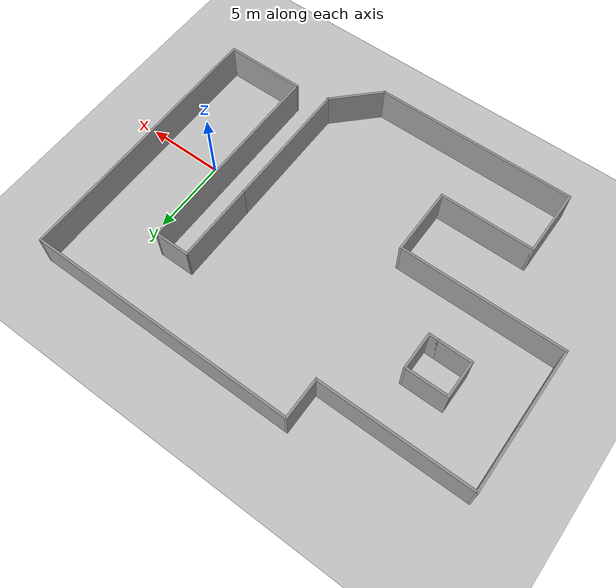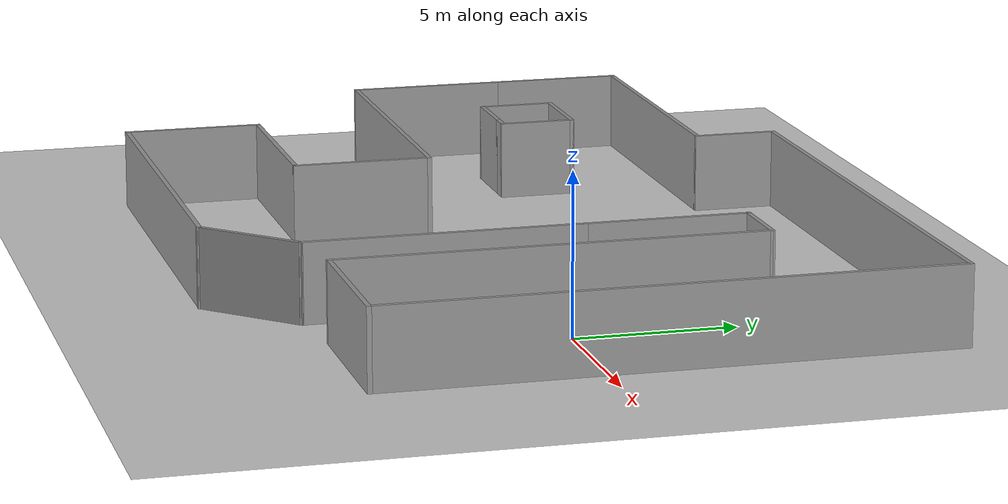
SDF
<sdf version="1.6">
 <world name="default">
  <light name="sun" type="directional">
   <pose>0 0 10 0 -0 0</pose>
   <diffuse>0.8 0.8 0.8 1</diffuse>
   <specular>0.2 0.2 0.2 1</specular>
   <attenuation>
    <range>1000</range>
    <constant>0.9</constant>
    <linear>0.01</linear>
    <quadratic>0.001</quadratic>
   </attenuation>
   <direction>-0.5 0.1 -0.9</direction>
  </light>
  <model name="ground_plane">
   <static>1</static>
   <link name="link">
    <collision name="collision">
     <geometry><plane><normal>0 0 1</normal><size>100 100</size></plane></geometry>
     <surface>
      <contact><collide_bitmask>65535</collide_bitmask></contact>
      <friction><ode><mu>100</mu><mu2>50</mu2></ode></friction>
     </surface>
    </collision>
    <visual name="visual">
     <cast_shadows>0</cast_shadows>
     <geometry><plane><normal>0 0 1</normal><size>100 100</size></plane></geometry>
     <material>
      <script><uri>file://media/materials/scripts/gazebo.material</uri><name>Gazebo/Grey</name></script>
     </material>
    </visual>
   </link>
  </model>
  <gravity>0 0 -9.8</gravity>
  <magnetic_field>6e-06 2.3e-05 -4.2e-05</magnetic_field>
  <atmosphere type="adiabatic"/>
  <physics name="default_physics" default="0" type="ode">
   <max_step_size>0.001</max_step_size>
   <real_time_factor>1</real_time_factor>
   <real_time_update_rate>1000</real_time_update_rate>
  </physics>
  <scene><ambient>0.4 0.4 0.4 1</ambient><background>0.7 0.7 0.7 1</background><shadows>1</shadows></scene>
  <audio><device>default</device></audio>
  <spherical_coordinates>
   <surface_model>EARTH_WGS84</surface_model>
   <latitude_deg>0</latitude_deg>
   <longitude_deg>0</longitude_deg>
   <elevation>0</elevation>
   <heading_deg>0</heading_deg>
  </spherical_coordinates>
  <model name="room_1">
   <pose>-9.96508 0.465269 0 0 -0 0</pose>
   <link name="Wall_0">
    <collision name="Wall_0_Collision">
     <geometry><box><size>5.25 0.15 2.5</size></box></geometry>
     <pose>0 0 1.25 0 -0 0</pose>
    </collision>
    <visual name="Wall_0_Visual">
     <pose>0 0 1.25 0 -0 0</pose>
     <geometry><box><size>5.25 0.15 2.5</size></box></geometry>
     <material>
      <script><uri>file://media/materials/scripts/gazebo.material</uri><name>Gazebo/Grey</name></script>
      <ambient>1 1 1 1</ambient>
     </material>
     <meta><layer>0</layer></meta>
    </visual>
    <pose>6.42058 3.46112 0 0 -0 -1.5708</pose>
   </link>
   <link name="Wall_1">
    <collision name="Wall_1_Collision">
     <geometry><box><size>8.75 0.15 2.5</size></box></geometry>
     <pose>0 0 1.25 0 -0 0</pose>
    </collision>
    <visual name="Wall_1_Visual">
     <pose>0 0 1.25 0 -0 0</pose>
     <geometry><box><size>8.75 0.15 2.5</size></box></geometry>
     <material>
      <script><uri>file://media/materials/scripts/gazebo.material</uri><name>Gazebo/Grey</name></script>
      <ambient>1 1 1 1</ambient>
     </material>
     <meta><layer>0</layer></meta>
    </visual>
    <pose>6.42058 -3.38888 0 0 -0 -1.5708</pose>
   </link>
   <link name="Wall_11">
    <collision name="Wall_11_Collision">
     <geometry><box><size>4.25 0.15 2.5</size></box></geometry>
     <pose>0 0 1.25 0 -0 0</pose>
    </collision>
    <visual name="Wall_11_Visual">
     <pose>0 0 1.25 0 -0 0</pose>
     <geometry><box><size>4.25 0.15 2.5</size></box></geometry>
     <material>
      <script><uri>file://media/materials/scripts/gazebo.material</uri><name>Gazebo/Grey</name></script>
      <ambient>1 1 1 1</ambient>
     </material>
     <meta><layer>0</layer></meta>
    </visual>
    <pose>-13.725 5.61553 0 0 -0 1.5708</pose>
   </link>
   <link name="Wall_12">
    <collision name="Wall_12_Collision">
     <geometry><box><size>10 0.15 2.5</size></box></geometry>
     <pose>0 0 1.25 0 -0 0</pose>
    </collision>
    <visual name="Wall_12_Visual">
     <pose>0 0 1.25 0 -0 0</pose>
     <geometry><box><size>10 0.15 2.5</size></box></geometry>
     <material>
      <script><uri>file://media/materials/scripts/gazebo.material</uri><name>Gazebo/Grey</name></script>
      <ambient>1 1 1 1</ambient>
     </material>
     <meta><layer>0</layer></meta>
    </visual>
    <pose>-8.8 7.66553 0 0 -0 0</pose>
   </link>
   <link name="Wall_13">
    <collision name="Wall_13_Collision">
     <geometry><box><size>2.75 0.15 2.5</size></box></geometry>
     <pose>0 0 1.25 0 -0 0</pose>
    </collision>
    <visual name="Wall_13_Visual">
     <pose>0 0 1.25 0 -0 0</pose>
     <geometry><box><size>2.75 0.15 2.5</size></box></geometry>
     <material>
      <script><uri>file://media/materials/scripts/gazebo.material</uri><name>Gazebo/Grey</name></script>
      <ambient>1 1 1 1</ambient>
     </material>
     <meta><layer>0</layer></meta>
    </visual>
    <pose>-3.875 8.96553 0 0 -0 1.5708</pose>
   </link>
   <link name="Wall_14">
    <collision name="Wall_14_Collision">
     <geometry><box><size>17.75 0.15 2.5</size></box></geometry>
     <pose>0 0 1.25 0 -0 0</pose>
    </collision>
    <visual name="Wall_14_Visual">
     <pose>0 0 1.25 0 -0 0</pose>
     <geometry><box><size>17.75 0.15 2.5</size></box></geometry>
     <material>
      <script><uri>file://media/materials/scripts/gazebo.material</uri><name>Gazebo/Grey</name></script>
      <ambient>1 1 1 1</ambient>
     </material>
     <meta><layer>0</layer></meta>
    </visual>
    <pose>4.925 10.2655 0 0 -0 0</pose>
   </link>
   <link name="Wall_15">
    <collision name="Wall_15_Collision">
     <geometry><box><size>17.75 0.15 2.5</size></box></geometry>
     <pose>0 0 1.25 0 -0 0</pose>
    </collision>
    <visual name="Wall_15_Visual">
     <pose>0 0 1.25 0 -0 0</pose>
     <geometry><box><size>17.75 0.15 2.5</size></box></geometry>
     <material>
      <script><uri>file://media/materials/scripts/gazebo.material</uri><name>Gazebo/Grey</name></script>
      <ambient>1 1 1 1</ambient>
     </material>
     <meta><layer>0</layer></meta>
    </visual>
    <pose>13.725 1.46553 0 0 -0 -1.5708</pose>
   </link>
   <link name="Wall_16">
    <collision name="Wall_16_Collision">
     <geometry><box><size>5.25 0.15 2.5</size></box></geometry>
     <pose>0 0 1.25 0 -0 0</pose>
    </collision>
    <visual name="Wall_16_Visual">
     <pose>0 0 1.25 0 -0 0</pose>
     <geometry><box><size>5.25 0.15 2.5</size></box></geometry>
     <material>
      <script><uri>file://media/materials/scripts/gazebo.material</uri><name>Gazebo/Grey</name></script>
      <ambient>1 1 1 1</ambient>
     </material>
     <meta><layer>0</layer></meta>
    </visual>
    <pose>11.175 -7.33447 0 0 -0 3.14159</pose>
   </link>
   <link name="Wall_17">
    <collision name="Wall_17_Collision">
     <geometry><box><size>13.5 0.15 2.5</size></box></geometry>
     <pose>0 0 1.25 0 -0 0</pose>
    </collision>
    <visual name="Wall_17_Visual">
     <pose>0 0 1.25 0 -0 0</pose>
     <geometry><box><size>13.5 0.15 2.5</size></box></geometry>
     <material>
      <script><uri>file://media/materials/scripts/gazebo.material</uri><name>Gazebo/Grey</name></script>
      <ambient>1 1 1 1</ambient>
     </material>
     <meta><layer>0</layer></meta>
    </visual>
    <pose>8.625 -0.659467 0 0 -0 1.5708</pose>
   </link>
   <link name="Wall_18">
    <collision name="Wall_18_Collision">
     <geometry><box><size>2.35442 0.15 2.5</size></box></geometry>
     <pose>0 0 1.25 0 -0 0</pose>
    </collision>
    <visual name="Wall_18_Visual">
     <pose>0 0 1.25 0 -0 0</pose>
     <geometry><box><size>2.35442 0.15 2.5</size></box></geometry>
     <material>
      <script><uri>file://media/materials/scripts/gazebo.material</uri><name>Gazebo/Grey</name></script>
      <ambient>1 1 1 1</ambient>
     </material>
     <meta><layer>0</layer></meta>
    </visual>
    <pose>7.52279 6.01333 0 0 -0 -3.13959</pose>
   </link>
   <link name="Wall_2">
    <collision name="Wall_2_Collision">
     <geometry><box><size>3.75 0.15 2.5</size></box></geometry>
     <pose>0 0 1.25 0 -0 0</pose>
    </collision>
    <visual name="Wall_2_Visual">
     <pose>0 0 1.25 0 -0 0</pose>
     <geometry><box><size>3.75 0.15 2.5</size></box></geometry>
     <material>
      <script><uri>file://media/materials/scripts/gazebo.material</uri><name>Gazebo/Grey</name></script>
      <ambient>1 1 1 1</ambient>
     </material>
     <meta><layer>0</layer></meta>
    </visual>
    <pose>5.14779 -8.96167 0 0 -0 -2.35619</pose>
   </link>
   <link name="Wall_20">
    <collision name="Wall_20_Collision">
     <geometry><box><size>2.5 0.15 2.5</size></box></geometry>
     <pose>0 0 1.25 0 -0 0</pose>
    </collision>
    <visual name="Wall_20_Visual">
     <pose>0 0 1.25 0 -0 0</pose>
     <geometry><box><size>2.5 0.15 2.5</size></box></geometry>
     <material>
      <script><uri>file://media/materials/scripts/gazebo.material</uri><name>Gazebo/Grey</name></script>
      <ambient>1 1 1 1</ambient>
     </material>
     <meta><layer>0</layer></meta>
    </visual>
    <pose>-9.96918 3.17229 0 0 -0 -1.5708</pose>
   </link>
   <link name="Wall_26">
    <collision name="Wall_26_Collision">
     <geometry><box><size>2.25 0.15 2.5</size></box></geometry>
     <pose>0 0 1.25 0 -0 0</pose>
    </collision>
    <visual name="Wall_26_Visual">
     <pose>0 0 1.25 0 -0 0</pose>
     <geometry><box><size>2.25 0.15 2.5</size></box></geometry>
     <material>
      <script><uri>file://media/materials/scripts/gazebo.material</uri><name>Gazebo/Grey</name></script>
      <ambient>1 1 1 1</ambient>
     </material>
     <meta><layer>0</layer></meta>
    </visual>
    <pose>-8.91918 1.99729 0 0 -0 0</pose>
   </link>
   <link name="Wall_27">
    <collision name="Wall_27_Collision">
     <geometry><box><size>0.75 0.15 2.5</size></box></geometry>
     <pose>0 0 1.25 0 -0 0</pose>
    </collision>
    <visual name="Wall_27_Visual">
     <pose>0 0 1.25 0 -0 0</pose>
     <geometry><box><size>0.75 0.15 2.5</size></box></geometry>
     <material>
      <script><uri>file://media/materials/scripts/gazebo.material</uri><name>Gazebo/Grey</name></script>
      <ambient>1 1 1 1</ambient>
     </material>
     <meta><layer>0</layer></meta>
    </visual>
    <pose>-7.56918 1.99729 0 0 -0 0</pose>
   </link>
   <link name="Wall_28">
    <collision name="Wall_28_Collision">
     <geometry><box><size>2.5 0.15 2.5</size></box></geometry>
     <pose>0 0 1.25 0 -0 0</pose>
    </collision>
    <visual name="Wall_28_Visual">
     <pose>0 0 1.25 0 -0 0</pose>
     <geometry><box><size>2.5 0.15 2.5</size></box></geometry>
     <material>
      <script><uri>file://media/materials/scripts/gazebo.material</uri><name>Gazebo/Grey</name></script>
      <ambient>1 1 1 1</ambient>
     </material>
     <meta><layer>0</layer></meta>
    </visual>
    <pose>-7.26918 3.17229 0 0 -0 1.5708</pose>
   </link>
   <link name="Wall_29">
    <collision name="Wall_29_Collision">
     <geometry><box><size>2.85 0.15 2.5</size></box></geometry>
     <pose>0 0 1.25 0 -0 0</pose>
    </collision>
    <visual name="Wall_29_Visual">
     <pose>0 0 1.25 0 -0 0</pose>
     <geometry><box><size>2.85 0.15 2.5</size></box></geometry>
     <material>
      <script><uri>file://media/materials/scripts/gazebo.material</uri><name>Gazebo/Grey</name></script>
      <ambient>1 1 1 1</ambient>
     </material>
     <meta><layer>0</layer></meta>
    </visual>
    <pose>-8.61918 4.34729 0 0 -0 3.14159</pose>
   </link>
   <link name="Wall_3">
    <collision name="Wall_3_Collision">
     <geometry><box><size>13.25 0.15 2.5</size></box></geometry>
     <pose>0 0 1.25 0 -0 0</pose>
    </collision>
    <visual name="Wall_3_Visual">
     <pose>0 0 1.25 0 -0 0</pose>
     <geometry><box><size>13.25 0.15 2.5</size></box></geometry>
     <material>
      <script><uri>file://media/materials/scripts/gazebo.material</uri><name>Gazebo/Grey</name></script>
      <ambient>1 1 1 1</ambient>
     </material>
     <meta><layer>0</layer></meta>
    </visual>
    <pose>-2.675 -10.2345 0 0 -0 3.14159</pose>
   </link>
   <link name="Wall_4">
    <collision name="Wall_4_Collision">
     <geometry><box><size>4.5 0.15 2.5</size></box></geometry>
     <pose>0 0 1.25 0 -0 0</pose>
    </collision>
    <visual name="Wall_4_Visual">
     <pose>0 0 1.25 0 -0 0</pose>
     <geometry><box><size>4.5 0.15 2.5</size></box></geometry>
     <material>
      <script><uri>file://media/materials/scripts/gazebo.material</uri><name>Gazebo/Grey</name></script>
      <ambient>1 1 1 1</ambient>
     </material>
     <meta><layer>0</layer></meta>
    </visual>
    <pose>-9.225 -8.05947 0 0 -0 1.5708</pose>
   </link>
   <link name="Wall_5">
    <collision name="Wall_5_Collision">
     <geometry><box><size>6.25 0.15 2.5</size></box></geometry>
     <pose>0 0 1.25 0 -0 0</pose>
    </collision>
    <visual name="Wall_5_Visual">
     <pose>0 0 1.25 0 -0 0</pose>
     <geometry><box><size>6.25 0.15 2.5</size></box></geometry>
     <material>
      <script><uri>file://media/materials/scripts/gazebo.material</uri><name>Gazebo/Grey</name></script>
      <ambient>1 1 1 1</ambient>
     </material>
     <meta><layer>0</layer></meta>
    </visual>
    <pose>-6.175 -5.88447 0 0 -0 0</pose>
   </link>
   <link name="Wall_6">
    <collision name="Wall_6_Collision">
     <geometry><box><size>4.5 0.15 2.5</size></box></geometry>
     <pose>0 0 1.25 0 -0 0</pose>
    </collision>
    <visual name="Wall_6_Visual">
     <pose>0 0 1.25 0 -0 0</pose>
     <geometry><box><size>4.5 0.15 2.5</size></box></geometry>
     <material>
      <script><uri>file://media/materials/scripts/gazebo.material</uri><name>Gazebo/Grey</name></script>
      <ambient>1 1 1 1</ambient>
     </material>
     <meta><layer>0</layer></meta>
    </visual>
    <pose>-3.125 -3.70947 0 0 -0 1.5708</pose>
   </link>
   <link name="Wall_7">
    <collision name="Wall_7_Collision">
     <geometry><box><size>10.75 0.15 2.5</size></box></geometry>
     <pose>0 0 1.25 0 -0 0</pose>
    </collision>
    <visual name="Wall_7_Visual">
     <pose>0 0 1.25 0 -0 0</pose>
     <geometry><box><size>10.75 0.15 2.5</size></box></geometry>
     <material>
      <script><uri>file://media/materials/scripts/gazebo.material</uri><name>Gazebo/Grey</name></script>
      <ambient>1 1 1 1</ambient>
     </material>
     <meta><layer>0</layer></meta>
    </visual>
    <pose>-8.425 -1.53447 0 0 -0 3.14159</pose>
   </link>
   <link name="Wall_8">
    <collision name="Wall_8_Collision">
     <geometry><box><size>5.25 0.15 2.5</size></box></geometry>
     <pose>0 0 1.25 0 -0 0</pose>
    </collision>
    <visual name="Wall_8_Visual">
     <pose>0 0 1.25 0 -0 0</pose>
     <geometry><box><size>5.25 0.15 2.5</size></box></geometry>
     <material>
      <script><uri>file://media/materials/scripts/gazebo.material</uri><name>Gazebo/Grey</name></script>
      <ambient>1 1 1 1</ambient>
     </material>
     <meta><layer>0</layer></meta>
    </visual>
    <pose>-13.725 1.01553 0 0 -0 1.5708</pose>
   </link>
   <static>1</static>
  </model>
 </world>
</sdf>
